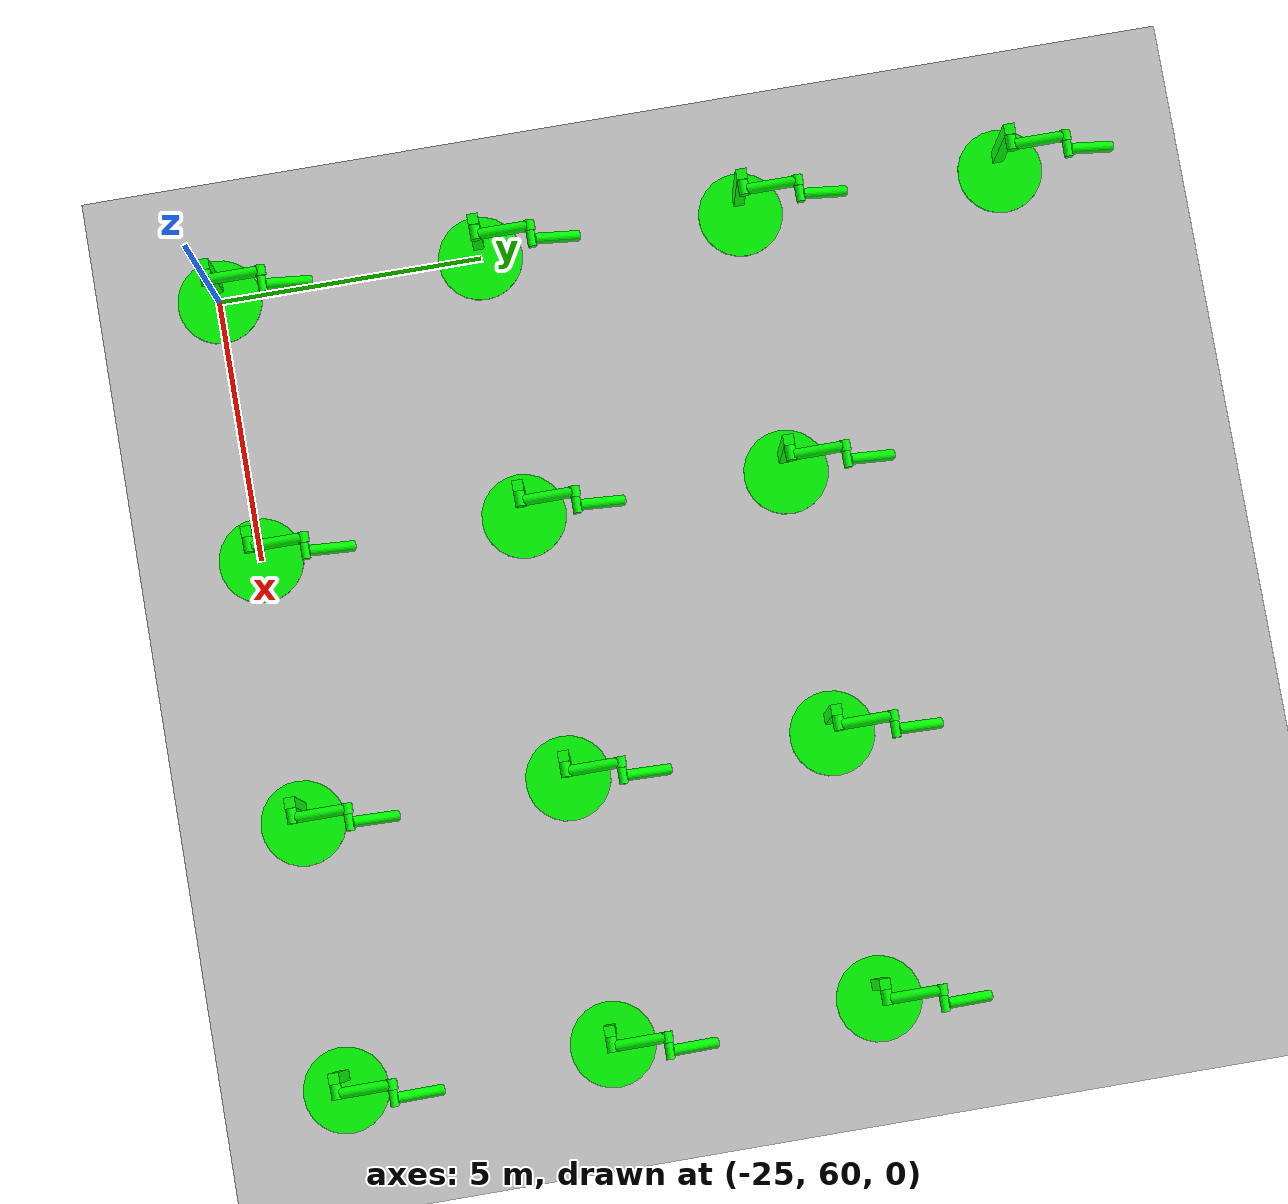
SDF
<sdf version="1.6">
 <world name="double_pendulums">
  <model name="ground_plane">
   <static>true</static>
   <link name="link">
    <collision name="collision">
     <geometry><plane><normal>0 0 1</normal><size>100 100</size></plane></geometry>
    </collision>
    <visual name="visual">
     <geometry><plane><normal>0 0 1</normal><size>100 100</size></plane></geometry>
     <material>
      <ambient>0.8 0.8 0.8 1</ambient>
      <diffuse>0.8 0.8 0.8 1</diffuse>
      <specular>0.8 0.8 0.8 1</specular>
     </material>
    </visual>
   </link>
  </model>
  <model name="dbl_pendulum_300">
   <pose>-25 60 0 0 0 0</pose>
   <link name="base">
    <inertial><mass>100</mass></inertial>
    <visual name="vis_plate_on_ground">
     <pose>0 0 0.01 0 0 0</pose>
     <geometry><cylinder><radius>0.8</radius><length>0.02</length></cylinder></geometry>
     <material><ambient>0 1 0 1</ambient><diffuse>0 1 0 1</diffuse><specular>0 1 0 1</specular></material>
    </visual>
    <visual name="vis_pole">
     <pose>-0.275 0 1.1 0 0 0</pose>
     <geometry><box><size>0.2 0.2 2.2</size></box></geometry>
     <material><ambient>0 1 0 1</ambient><diffuse>0 1 0 1</diffuse><specular>0 1 0 1</specular></material>
    </visual>
    <collision name="col_plate_on_ground">
     <pose>0 0 0.01 0 0 0</pose>
     <geometry><cylinder><radius>0.8</radius><length>0.02</length></cylinder></geometry>
    </collision>
    <collision name="col_pole">
     <pose>-0.275 0 1.1 0 0 0</pose>
     <geometry><box><size>0.2 0.2 2.2</size></box></geometry>
    </collision>
   </link>
   <link name="upper_link">
    <pose>0 0 2.1 -1.5708 0 0</pose>
    <inertial><pose>0 0 0.5 0 0 0</pose></inertial>
    <visual name="vis_upper_joint">
     <pose>-0.05 0 0 0 1.5708 0</pose>
     <geometry><cylinder><radius>0.1</radius><length>0.3</length></cylinder></geometry>
     <material><ambient>0 1 0 1</ambient><diffuse>0 1 0 1</diffuse><specular>0 1 0 1</specular></material>
    </visual>
    <visual name="vis_lower_joint">
     <pose>0 0 1.0 0 1.5708 0</pose>
     <geometry><cylinder><radius>0.1</radius><length>0.2</length></cylinder></geometry>
     <material><ambient>0 1 0 1</ambient><diffuse>0 1 0 1</diffuse><specular>0 1 0 1</specular></material>
    </visual>
    <visual name="vis_cylinder">
     <pose>0 0 0.5 0 0 0</pose>
     <geometry><cylinder><radius>0.1</radius><length>0.9</length></cylinder></geometry>
     <material><ambient>0 1 0 1</ambient><diffuse>0 1 0 1</diffuse><specular>0 1 0 1</specular></material>
    </visual>
    <collision name="col_upper_joint">
     <pose>-0.05 0 0 0 1.5708 0</pose>
     <geometry><cylinder><radius>0.1</radius><length>0.3</length></cylinder></geometry>
    </collision>
    <collision name="col_lower_joint">
     <pose>0 0 1.0 0 1.5708 0</pose>
     <geometry><cylinder><radius>0.1</radius><length>0.2</length></cylinder></geometry>
    </collision>
    <collision name="col_cylinder">
     <pose>0 0 0.5 0 0 0</pose>
     <geometry><cylinder><radius>0.1</radius><length>0.9</length></cylinder></geometry>
    </collision>
   </link>
   <link name="lower_link">
    <pose>0.25 1.0 2.1 -2 0 0</pose>
    <inertial><pose>0 0 0.5 0 0 0</pose></inertial>
    <visual name="vis_lower_joint">
     <pose>0 0 0 0 1.5708 0</pose>
     <geometry><cylinder><radius>0.08</radius><length>0.3</length></cylinder></geometry>
     <material><ambient>0 1 0 1</ambient><diffuse>0 1 0 1</diffuse><specular>0 1 0 1</specular></material>
    </visual>
    <visual name="vis_cylinder">
     <pose>0 0 0.5 0 0 0</pose>
     <geometry><cylinder><radius>0.1</radius><length>0.9</length></cylinder></geometry>
     <material><ambient>0 1 0 1</ambient><diffuse>0 1 0 1</diffuse><specular>0 1 0 1</specular></material>
    </visual>
    <collision name="col_lower_joint">
     <pose>0 0 0 0 1.5708 0</pose>
     <geometry><cylinder><radius>0.08</radius><length>0.3</length></cylinder></geometry>
    </collision>
    <collision name="col_cylinder">
     <pose>0 0 0.5 0 0 0</pose>
     <geometry><cylinder><radius>0.1</radius><length>0.9</length></cylinder></geometry>
    </collision>
   </link>
   <joint name="upper_joint" type="revolute">
    <parent>base</parent>
    <child>upper_link</child>
    <axis><xyz>1.0 0 0</xyz></axis>
   </joint>
   <joint name="lower_joint" type="revolute">
    <parent>upper_link</parent>
    <child>lower_link</child>
    <axis><xyz>1.0 0 0</xyz></axis>
   </joint>
  </model>
  <model name="dbl_pendulum_301">
   <pose>-20 60 0 0 0 0</pose>
   <link name="base">
    <inertial><mass>100</mass></inertial>
    <visual name="vis_plate_on_ground">
     <pose>0 0 0.01 0 0 0</pose>
     <geometry><cylinder><radius>0.8</radius><length>0.02</length></cylinder></geometry>
     <material><ambient>0 1 0 1</ambient><diffuse>0 1 0 1</diffuse><specular>0 1 0 1</specular></material>
    </visual>
    <visual name="vis_pole">
     <pose>-0.275 0 1.1 0 0 0</pose>
     <geometry><box><size>0.2 0.2 2.2</size></box></geometry>
     <material><ambient>0 1 0 1</ambient><diffuse>0 1 0 1</diffuse><specular>0 1 0 1</specular></material>
    </visual>
    <collision name="col_plate_on_ground">
     <pose>0 0 0.01 0 0 0</pose>
     <geometry><cylinder><radius>0.8</radius><length>0.02</length></cylinder></geometry>
    </collision>
    <collision name="col_pole">
     <pose>-0.275 0 1.1 0 0 0</pose>
     <geometry><box><size>0.2 0.2 2.2</size></box></geometry>
    </collision>
   </link>
   <link name="upper_link">
    <pose>0 0 2.1 -1.5708 0 0</pose>
    <inertial><pose>0 0 0.5 0 0 0</pose></inertial>
    <visual name="vis_upper_joint">
     <pose>-0.05 0 0 0 1.5708 0</pose>
     <geometry><cylinder><radius>0.1</radius><length>0.3</length></cylinder></geometry>
     <material><ambient>0 1 0 1</ambient><diffuse>0 1 0 1</diffuse><specular>0 1 0 1</specular></material>
    </visual>
    <visual name="vis_lower_joint">
     <pose>0 0 1.0 0 1.5708 0</pose>
     <geometry><cylinder><radius>0.1</radius><length>0.2</length></cylinder></geometry>
     <material><ambient>0 1 0 1</ambient><diffuse>0 1 0 1</diffuse><specular>0 1 0 1</specular></material>
    </visual>
    <visual name="vis_cylinder">
     <pose>0 0 0.5 0 0 0</pose>
     <geometry><cylinder><radius>0.1</radius><length>0.9</length></cylinder></geometry>
     <material><ambient>0 1 0 1</ambient><diffuse>0 1 0 1</diffuse><specular>0 1 0 1</specular></material>
    </visual>
    <collision name="col_upper_joint">
     <pose>-0.05 0 0 0 1.5708 0</pose>
     <geometry><cylinder><radius>0.1</radius><length>0.3</length></cylinder></geometry>
    </collision>
    <collision name="col_lower_joint">
     <pose>0 0 1.0 0 1.5708 0</pose>
     <geometry><cylinder><radius>0.1</radius><length>0.2</length></cylinder></geometry>
    </collision>
    <collision name="col_cylinder">
     <pose>0 0 0.5 0 0 0</pose>
     <geometry><cylinder><radius>0.1</radius><length>0.9</length></cylinder></geometry>
    </collision>
   </link>
   <link name="lower_link">
    <pose>0.25 1.0 2.1 -2 0 0</pose>
    <inertial><pose>0 0 0.5 0 0 0</pose></inertial>
    <visual name="vis_lower_joint">
     <pose>0 0 0 0 1.5708 0</pose>
     <geometry><cylinder><radius>0.08</radius><length>0.3</length></cylinder></geometry>
     <material><ambient>0 1 0 1</ambient><diffuse>0 1 0 1</diffuse><specular>0 1 0 1</specular></material>
    </visual>
    <visual name="vis_cylinder">
     <pose>0 0 0.5 0 0 0</pose>
     <geometry><cylinder><radius>0.1</radius><length>0.9</length></cylinder></geometry>
     <material><ambient>0 1 0 1</ambient><diffuse>0 1 0 1</diffuse><specular>0 1 0 1</specular></material>
    </visual>
    <collision name="col_lower_joint">
     <pose>0 0 0 0 1.5708 0</pose>
     <geometry><cylinder><radius>0.08</radius><length>0.3</length></cylinder></geometry>
    </collision>
    <collision name="col_cylinder">
     <pose>0 0 0.5 0 0 0</pose>
     <geometry><cylinder><radius>0.1</radius><length>0.9</length></cylinder></geometry>
    </collision>
   </link>
   <joint name="upper_joint" type="revolute">
    <parent>base</parent>
    <child>upper_link</child>
    <axis><xyz>1.0 0 0</xyz></axis>
   </joint>
   <joint name="lower_joint" type="revolute">
    <parent>upper_link</parent>
    <child>lower_link</child>
    <axis><xyz>1.0 0 0</xyz></axis>
   </joint>
  </model>
  <model name="dbl_pendulum_302">
   <pose>-15 60 0 0 0 0</pose>
   <link name="base">
    <inertial><mass>100</mass></inertial>
    <visual name="vis_plate_on_ground">
     <pose>0 0 0.01 0 0 0</pose>
     <geometry><cylinder><radius>0.8</radius><length>0.02</length></cylinder></geometry>
     <material><ambient>0 1 0 1</ambient><diffuse>0 1 0 1</diffuse><specular>0 1 0 1</specular></material>
    </visual>
    <visual name="vis_pole">
     <pose>-0.275 0 1.1 0 0 0</pose>
     <geometry><box><size>0.2 0.2 2.2</size></box></geometry>
     <material><ambient>0 1 0 1</ambient><diffuse>0 1 0 1</diffuse><specular>0 1 0 1</specular></material>
    </visual>
    <collision name="col_plate_on_ground">
     <pose>0 0 0.01 0 0 0</pose>
     <geometry><cylinder><radius>0.8</radius><length>0.02</length></cylinder></geometry>
    </collision>
    <collision name="col_pole">
     <pose>-0.275 0 1.1 0 0 0</pose>
     <geometry><box><size>0.2 0.2 2.2</size></box></geometry>
    </collision>
   </link>
   <link name="upper_link">
    <pose>0 0 2.1 -1.5708 0 0</pose>
    <inertial><pose>0 0 0.5 0 0 0</pose></inertial>
    <visual name="vis_upper_joint">
     <pose>-0.05 0 0 0 1.5708 0</pose>
     <geometry><cylinder><radius>0.1</radius><length>0.3</length></cylinder></geometry>
     <material><ambient>0 1 0 1</ambient><diffuse>0 1 0 1</diffuse><specular>0 1 0 1</specular></material>
    </visual>
    <visual name="vis_lower_joint">
     <pose>0 0 1.0 0 1.5708 0</pose>
     <geometry><cylinder><radius>0.1</radius><length>0.2</length></cylinder></geometry>
     <material><ambient>0 1 0 1</ambient><diffuse>0 1 0 1</diffuse><specular>0 1 0 1</specular></material>
    </visual>
    <visual name="vis_cylinder">
     <pose>0 0 0.5 0 0 0</pose>
     <geometry><cylinder><radius>0.1</radius><length>0.9</length></cylinder></geometry>
     <material><ambient>0 1 0 1</ambient><diffuse>0 1 0 1</diffuse><specular>0 1 0 1</specular></material>
    </visual>
    <collision name="col_upper_joint">
     <pose>-0.05 0 0 0 1.5708 0</pose>
     <geometry><cylinder><radius>0.1</radius><length>0.3</length></cylinder></geometry>
    </collision>
    <collision name="col_lower_joint">
     <pose>0 0 1.0 0 1.5708 0</pose>
     <geometry><cylinder><radius>0.1</radius><length>0.2</length></cylinder></geometry>
    </collision>
    <collision name="col_cylinder">
     <pose>0 0 0.5 0 0 0</pose>
     <geometry><cylinder><radius>0.1</radius><length>0.9</length></cylinder></geometry>
    </collision>
   </link>
   <link name="lower_link">
    <pose>0.25 1.0 2.1 -2 0 0</pose>
    <inertial><pose>0 0 0.5 0 0 0</pose></inertial>
    <visual name="vis_lower_joint">
     <pose>0 0 0 0 1.5708 0</pose>
     <geometry><cylinder><radius>0.08</radius><length>0.3</length></cylinder></geometry>
     <material><ambient>0 1 0 1</ambient><diffuse>0 1 0 1</diffuse><specular>0 1 0 1</specular></material>
    </visual>
    <visual name="vis_cylinder">
     <pose>0 0 0.5 0 0 0</pose>
     <geometry><cylinder><radius>0.1</radius><length>0.9</length></cylinder></geometry>
     <material><ambient>0 1 0 1</ambient><diffuse>0 1 0 1</diffuse><specular>0 1 0 1</specular></material>
    </visual>
    <collision name="col_lower_joint">
     <pose>0 0 0 0 1.5708 0</pose>
     <geometry><cylinder><radius>0.08</radius><length>0.3</length></cylinder></geometry>
    </collision>
    <collision name="col_cylinder">
     <pose>0 0 0.5 0 0 0</pose>
     <geometry><cylinder><radius>0.1</radius><length>0.9</length></cylinder></geometry>
    </collision>
   </link>
   <joint name="upper_joint" type="revolute">
    <parent>base</parent>
    <child>upper_link</child>
    <axis><xyz>1.0 0 0</xyz></axis>
   </joint>
   <joint name="lower_joint" type="revolute">
    <parent>upper_link</parent>
    <child>lower_link</child>
    <axis><xyz>1.0 0 0</xyz></axis>
   </joint>
  </model>
  <model name="dbl_pendulum_303">
   <pose>-10 60 0 0 0 0</pose>
   <link name="base">
    <inertial><mass>100</mass></inertial>
    <visual name="vis_plate_on_ground">
     <pose>0 0 0.01 0 0 0</pose>
     <geometry><cylinder><radius>0.8</radius><length>0.02</length></cylinder></geometry>
     <material><ambient>0 1 0 1</ambient><diffuse>0 1 0 1</diffuse><specular>0 1 0 1</specular></material>
    </visual>
    <visual name="vis_pole">
     <pose>-0.275 0 1.1 0 0 0</pose>
     <geometry><box><size>0.2 0.2 2.2</size></box></geometry>
     <material><ambient>0 1 0 1</ambient><diffuse>0 1 0 1</diffuse><specular>0 1 0 1</specular></material>
    </visual>
    <collision name="col_plate_on_ground">
     <pose>0 0 0.01 0 0 0</pose>
     <geometry><cylinder><radius>0.8</radius><length>0.02</length></cylinder></geometry>
    </collision>
    <collision name="col_pole">
     <pose>-0.275 0 1.1 0 0 0</pose>
     <geometry><box><size>0.2 0.2 2.2</size></box></geometry>
    </collision>
   </link>
   <link name="upper_link">
    <pose>0 0 2.1 -1.5708 0 0</pose>
    <inertial><pose>0 0 0.5 0 0 0</pose></inertial>
    <visual name="vis_upper_joint">
     <pose>-0.05 0 0 0 1.5708 0</pose>
     <geometry><cylinder><radius>0.1</radius><length>0.3</length></cylinder></geometry>
     <material><ambient>0 1 0 1</ambient><diffuse>0 1 0 1</diffuse><specular>0 1 0 1</specular></material>
    </visual>
    <visual name="vis_lower_joint">
     <pose>0 0 1.0 0 1.5708 0</pose>
     <geometry><cylinder><radius>0.1</radius><length>0.2</length></cylinder></geometry>
     <material><ambient>0 1 0 1</ambient><diffuse>0 1 0 1</diffuse><specular>0 1 0 1</specular></material>
    </visual>
    <visual name="vis_cylinder">
     <pose>0 0 0.5 0 0 0</pose>
     <geometry><cylinder><radius>0.1</radius><length>0.9</length></cylinder></geometry>
     <material><ambient>0 1 0 1</ambient><diffuse>0 1 0 1</diffuse><specular>0 1 0 1</specular></material>
    </visual>
    <collision name="col_upper_joint">
     <pose>-0.05 0 0 0 1.5708 0</pose>
     <geometry><cylinder><radius>0.1</radius><length>0.3</length></cylinder></geometry>
    </collision>
    <collision name="col_lower_joint">
     <pose>0 0 1.0 0 1.5708 0</pose>
     <geometry><cylinder><radius>0.1</radius><length>0.2</length></cylinder></geometry>
    </collision>
    <collision name="col_cylinder">
     <pose>0 0 0.5 0 0 0</pose>
     <geometry><cylinder><radius>0.1</radius><length>0.9</length></cylinder></geometry>
    </collision>
   </link>
   <link name="lower_link">
    <pose>0.25 1.0 2.1 -2 0 0</pose>
    <inertial><pose>0 0 0.5 0 0 0</pose></inertial>
    <visual name="vis_lower_joint">
     <pose>0 0 0 0 1.5708 0</pose>
     <geometry><cylinder><radius>0.08</radius><length>0.3</length></cylinder></geometry>
     <material><ambient>0 1 0 1</ambient><diffuse>0 1 0 1</diffuse><specular>0 1 0 1</specular></material>
    </visual>
    <visual name="vis_cylinder">
     <pose>0 0 0.5 0 0 0</pose>
     <geometry><cylinder><radius>0.1</radius><length>0.9</length></cylinder></geometry>
     <material><ambient>0 1 0 1</ambient><diffuse>0 1 0 1</diffuse><specular>0 1 0 1</specular></material>
    </visual>
    <collision name="col_lower_joint">
     <pose>0 0 0 0 1.5708 0</pose>
     <geometry><cylinder><radius>0.08</radius><length>0.3</length></cylinder></geometry>
    </collision>
    <collision name="col_cylinder">
     <pose>0 0 0.5 0 0 0</pose>
     <geometry><cylinder><radius>0.1</radius><length>0.9</length></cylinder></geometry>
    </collision>
   </link>
   <joint name="upper_joint" type="revolute">
    <parent>base</parent>
    <child>upper_link</child>
    <axis><xyz>1.0 0 0</xyz></axis>
   </joint>
   <joint name="lower_joint" type="revolute">
    <parent>upper_link</parent>
    <child>lower_link</child>
    <axis><xyz>1.0 0 0</xyz></axis>
   </joint>
  </model>
  <model name="dbl_pendulum_325">
   <pose>-25 65 0 0 0 0</pose>
   <link name="base">
    <inertial><mass>100</mass></inertial>
    <visual name="vis_plate_on_ground">
     <pose>0 0 0.01 0 0 0</pose>
     <geometry><cylinder><radius>0.8</radius><length>0.02</length></cylinder></geometry>
     <material><ambient>0 1 0 1</ambient><diffuse>0 1 0 1</diffuse><specular>0 1 0 1</specular></material>
    </visual>
    <visual name="vis_pole">
     <pose>-0.275 0 1.1 0 0 0</pose>
     <geometry><box><size>0.2 0.2 2.2</size></box></geometry>
     <material><ambient>0 1 0 1</ambient><diffuse>0 1 0 1</diffuse><specular>0 1 0 1</specular></material>
    </visual>
    <collision name="col_plate_on_ground">
     <pose>0 0 0.01 0 0 0</pose>
     <geometry><cylinder><radius>0.8</radius><length>0.02</length></cylinder></geometry>
    </collision>
    <collision name="col_pole">
     <pose>-0.275 0 1.1 0 0 0</pose>
     <geometry><box><size>0.2 0.2 2.2</size></box></geometry>
    </collision>
   </link>
   <link name="upper_link">
    <pose>0 0 2.1 -1.5708 0 0</pose>
    <inertial><pose>0 0 0.5 0 0 0</pose></inertial>
    <visual name="vis_upper_joint">
     <pose>-0.05 0 0 0 1.5708 0</pose>
     <geometry><cylinder><radius>0.1</radius><length>0.3</length></cylinder></geometry>
     <material><ambient>0 1 0 1</ambient><diffuse>0 1 0 1</diffuse><specular>0 1 0 1</specular></material>
    </visual>
    <visual name="vis_lower_joint">
     <pose>0 0 1.0 0 1.5708 0</pose>
     <geometry><cylinder><radius>0.1</radius><length>0.2</length></cylinder></geometry>
     <material><ambient>0 1 0 1</ambient><diffuse>0 1 0 1</diffuse><specular>0 1 0 1</specular></material>
    </visual>
    <visual name="vis_cylinder">
     <pose>0 0 0.5 0 0 0</pose>
     <geometry><cylinder><radius>0.1</radius><length>0.9</length></cylinder></geometry>
     <material><ambient>0 1 0 1</ambient><diffuse>0 1 0 1</diffuse><specular>0 1 0 1</specular></material>
    </visual>
    <collision name="col_upper_joint">
     <pose>-0.05 0 0 0 1.5708 0</pose>
     <geometry><cylinder><radius>0.1</radius><length>0.3</length></cylinder></geometry>
    </collision>
    <collision name="col_lower_joint">
     <pose>0 0 1.0 0 1.5708 0</pose>
     <geometry><cylinder><radius>0.1</radius><length>0.2</length></cylinder></geometry>
    </collision>
    <collision name="col_cylinder">
     <pose>0 0 0.5 0 0 0</pose>
     <geometry><cylinder><radius>0.1</radius><length>0.9</length></cylinder></geometry>
    </collision>
   </link>
   <link name="lower_link">
    <pose>0.25 1.0 2.1 -2 0 0</pose>
    <inertial><pose>0 0 0.5 0 0 0</pose></inertial>
    <visual name="vis_lower_joint">
     <pose>0 0 0 0 1.5708 0</pose>
     <geometry><cylinder><radius>0.08</radius><length>0.3</length></cylinder></geometry>
     <material><ambient>0 1 0 1</ambient><diffuse>0 1 0 1</diffuse><specular>0 1 0 1</specular></material>
    </visual>
    <visual name="vis_cylinder">
     <pose>0 0 0.5 0 0 0</pose>
     <geometry><cylinder><radius>0.1</radius><length>0.9</length></cylinder></geometry>
     <material><ambient>0 1 0 1</ambient><diffuse>0 1 0 1</diffuse><specular>0 1 0 1</specular></material>
    </visual>
    <collision name="col_lower_joint">
     <pose>0 0 0 0 1.5708 0</pose>
     <geometry><cylinder><radius>0.08</radius><length>0.3</length></cylinder></geometry>
    </collision>
    <collision name="col_cylinder">
     <pose>0 0 0.5 0 0 0</pose>
     <geometry><cylinder><radius>0.1</radius><length>0.9</length></cylinder></geometry>
    </collision>
   </link>
   <joint name="upper_joint" type="revolute">
    <parent>base</parent>
    <child>upper_link</child>
    <axis><xyz>1.0 0 0</xyz></axis>
   </joint>
   <joint name="lower_joint" type="revolute">
    <parent>upper_link</parent>
    <child>lower_link</child>
    <axis><xyz>1.0 0 0</xyz></axis>
   </joint>
  </model>
  <model name="dbl_pendulum_326">
   <pose>-20 65 0 0 0 0</pose>
   <link name="base">
    <inertial><mass>100</mass></inertial>
    <visual name="vis_plate_on_ground">
     <pose>0 0 0.01 0 0 0</pose>
     <geometry><cylinder><radius>0.8</radius><length>0.02</length></cylinder></geometry>
     <material><ambient>0 1 0 1</ambient><diffuse>0 1 0 1</diffuse><specular>0 1 0 1</specular></material>
    </visual>
    <visual name="vis_pole">
     <pose>-0.275 0 1.1 0 0 0</pose>
     <geometry><box><size>0.2 0.2 2.2</size></box></geometry>
     <material><ambient>0 1 0 1</ambient><diffuse>0 1 0 1</diffuse><specular>0 1 0 1</specular></material>
    </visual>
    <collision name="col_plate_on_ground">
     <pose>0 0 0.01 0 0 0</pose>
     <geometry><cylinder><radius>0.8</radius><length>0.02</length></cylinder></geometry>
    </collision>
    <collision name="col_pole">
     <pose>-0.275 0 1.1 0 0 0</pose>
     <geometry><box><size>0.2 0.2 2.2</size></box></geometry>
    </collision>
   </link>
   <link name="upper_link">
    <pose>0 0 2.1 -1.5708 0 0</pose>
    <inertial><pose>0 0 0.5 0 0 0</pose></inertial>
    <visual name="vis_upper_joint">
     <pose>-0.05 0 0 0 1.5708 0</pose>
     <geometry><cylinder><radius>0.1</radius><length>0.3</length></cylinder></geometry>
     <material><ambient>0 1 0 1</ambient><diffuse>0 1 0 1</diffuse><specular>0 1 0 1</specular></material>
    </visual>
    <visual name="vis_lower_joint">
     <pose>0 0 1.0 0 1.5708 0</pose>
     <geometry><cylinder><radius>0.1</radius><length>0.2</length></cylinder></geometry>
     <material><ambient>0 1 0 1</ambient><diffuse>0 1 0 1</diffuse><specular>0 1 0 1</specular></material>
    </visual>
    <visual name="vis_cylinder">
     <pose>0 0 0.5 0 0 0</pose>
     <geometry><cylinder><radius>0.1</radius><length>0.9</length></cylinder></geometry>
     <material><ambient>0 1 0 1</ambient><diffuse>0 1 0 1</diffuse><specular>0 1 0 1</specular></material>
    </visual>
    <collision name="col_upper_joint">
     <pose>-0.05 0 0 0 1.5708 0</pose>
     <geometry><cylinder><radius>0.1</radius><length>0.3</length></cylinder></geometry>
    </collision>
    <collision name="col_lower_joint">
     <pose>0 0 1.0 0 1.5708 0</pose>
     <geometry><cylinder><radius>0.1</radius><length>0.2</length></cylinder></geometry>
    </collision>
    <collision name="col_cylinder">
     <pose>0 0 0.5 0 0 0</pose>
     <geometry><cylinder><radius>0.1</radius><length>0.9</length></cylinder></geometry>
    </collision>
   </link>
   <link name="lower_link">
    <pose>0.25 1.0 2.1 -2 0 0</pose>
    <inertial><pose>0 0 0.5 0 0 0</pose></inertial>
    <visual name="vis_lower_joint">
     <pose>0 0 0 0 1.5708 0</pose>
     <geometry><cylinder><radius>0.08</radius><length>0.3</length></cylinder></geometry>
     <material><ambient>0 1 0 1</ambient><diffuse>0 1 0 1</diffuse><specular>0 1 0 1</specular></material>
    </visual>
    <visual name="vis_cylinder">
     <pose>0 0 0.5 0 0 0</pose>
     <geometry><cylinder><radius>0.1</radius><length>0.9</length></cylinder></geometry>
     <material><ambient>0 1 0 1</ambient><diffuse>0 1 0 1</diffuse><specular>0 1 0 1</specular></material>
    </visual>
    <collision name="col_lower_joint">
     <pose>0 0 0 0 1.5708 0</pose>
     <geometry><cylinder><radius>0.08</radius><length>0.3</length></cylinder></geometry>
    </collision>
    <collision name="col_cylinder">
     <pose>0 0 0.5 0 0 0</pose>
     <geometry><cylinder><radius>0.1</radius><length>0.9</length></cylinder></geometry>
    </collision>
   </link>
   <joint name="upper_joint" type="revolute">
    <parent>base</parent>
    <child>upper_link</child>
    <axis><xyz>1.0 0 0</xyz></axis>
   </joint>
   <joint name="lower_joint" type="revolute">
    <parent>upper_link</parent>
    <child>lower_link</child>
    <axis><xyz>1.0 0 0</xyz></axis>
   </joint>
  </model>
  <model name="dbl_pendulum_327">
   <pose>-15 65 0 0 0 0</pose>
   <link name="base">
    <inertial><mass>100</mass></inertial>
    <visual name="vis_plate_on_ground">
     <pose>0 0 0.01 0 0 0</pose>
     <geometry><cylinder><radius>0.8</radius><length>0.02</length></cylinder></geometry>
     <material><ambient>0 1 0 1</ambient><diffuse>0 1 0 1</diffuse><specular>0 1 0 1</specular></material>
    </visual>
    <visual name="vis_pole">
     <pose>-0.275 0 1.1 0 0 0</pose>
     <geometry><box><size>0.2 0.2 2.2</size></box></geometry>
     <material><ambient>0 1 0 1</ambient><diffuse>0 1 0 1</diffuse><specular>0 1 0 1</specular></material>
    </visual>
    <collision name="col_plate_on_ground">
     <pose>0 0 0.01 0 0 0</pose>
     <geometry><cylinder><radius>0.8</radius><length>0.02</length></cylinder></geometry>
    </collision>
    <collision name="col_pole">
     <pose>-0.275 0 1.1 0 0 0</pose>
     <geometry><box><size>0.2 0.2 2.2</size></box></geometry>
    </collision>
   </link>
   <link name="upper_link">
    <pose>0 0 2.1 -1.5708 0 0</pose>
    <inertial><pose>0 0 0.5 0 0 0</pose></inertial>
    <visual name="vis_upper_joint">
     <pose>-0.05 0 0 0 1.5708 0</pose>
     <geometry><cylinder><radius>0.1</radius><length>0.3</length></cylinder></geometry>
     <material><ambient>0 1 0 1</ambient><diffuse>0 1 0 1</diffuse><specular>0 1 0 1</specular></material>
    </visual>
    <visual name="vis_lower_joint">
     <pose>0 0 1.0 0 1.5708 0</pose>
     <geometry><cylinder><radius>0.1</radius><length>0.2</length></cylinder></geometry>
     <material><ambient>0 1 0 1</ambient><diffuse>0 1 0 1</diffuse><specular>0 1 0 1</specular></material>
    </visual>
    <visual name="vis_cylinder">
     <pose>0 0 0.5 0 0 0</pose>
     <geometry><cylinder><radius>0.1</radius><length>0.9</length></cylinder></geometry>
     <material><ambient>0 1 0 1</ambient><diffuse>0 1 0 1</diffuse><specular>0 1 0 1</specular></material>
    </visual>
    <collision name="col_upper_joint">
     <pose>-0.05 0 0 0 1.5708 0</pose>
     <geometry><cylinder><radius>0.1</radius><length>0.3</length></cylinder></geometry>
    </collision>
    <collision name="col_lower_joint">
     <pose>0 0 1.0 0 1.5708 0</pose>
     <geometry><cylinder><radius>0.1</radius><length>0.2</length></cylinder></geometry>
    </collision>
    <collision name="col_cylinder">
     <pose>0 0 0.5 0 0 0</pose>
     <geometry><cylinder><radius>0.1</radius><length>0.9</length></cylinder></geometry>
    </collision>
   </link>
   <link name="lower_link">
    <pose>0.25 1.0 2.1 -2 0 0</pose>
    <inertial><pose>0 0 0.5 0 0 0</pose></inertial>
    <visual name="vis_lower_joint">
     <pose>0 0 0 0 1.5708 0</pose>
     <geometry><cylinder><radius>0.08</radius><length>0.3</length></cylinder></geometry>
     <material><ambient>0 1 0 1</ambient><diffuse>0 1 0 1</diffuse><specular>0 1 0 1</specular></material>
    </visual>
    <visual name="vis_cylinder">
     <pose>0 0 0.5 0 0 0</pose>
     <geometry><cylinder><radius>0.1</radius><length>0.9</length></cylinder></geometry>
     <material><ambient>0 1 0 1</ambient><diffuse>0 1 0 1</diffuse><specular>0 1 0 1</specular></material>
    </visual>
    <collision name="col_lower_joint">
     <pose>0 0 0 0 1.5708 0</pose>
     <geometry><cylinder><radius>0.08</radius><length>0.3</length></cylinder></geometry>
    </collision>
    <collision name="col_cylinder">
     <pose>0 0 0.5 0 0 0</pose>
     <geometry><cylinder><radius>0.1</radius><length>0.9</length></cylinder></geometry>
    </collision>
   </link>
   <joint name="upper_joint" type="revolute">
    <parent>base</parent>
    <child>upper_link</child>
    <axis><xyz>1.0 0 0</xyz></axis>
   </joint>
   <joint name="lower_joint" type="revolute">
    <parent>upper_link</parent>
    <child>lower_link</child>
    <axis><xyz>1.0 0 0</xyz></axis>
   </joint>
  </model>
  <model name="dbl_pendulum_328">
   <pose>-10 65 0 0 0 0</pose>
   <link name="base">
    <inertial><mass>100</mass></inertial>
    <visual name="vis_plate_on_ground">
     <pose>0 0 0.01 0 0 0</pose>
     <geometry><cylinder><radius>0.8</radius><length>0.02</length></cylinder></geometry>
     <material><ambient>0 1 0 1</ambient><diffuse>0 1 0 1</diffuse><specular>0 1 0 1</specular></material>
    </visual>
    <visual name="vis_pole">
     <pose>-0.275 0 1.1 0 0 0</pose>
     <geometry><box><size>0.2 0.2 2.2</size></box></geometry>
     <material><ambient>0 1 0 1</ambient><diffuse>0 1 0 1</diffuse><specular>0 1 0 1</specular></material>
    </visual>
    <collision name="col_plate_on_ground">
     <pose>0 0 0.01 0 0 0</pose>
     <geometry><cylinder><radius>0.8</radius><length>0.02</length></cylinder></geometry>
    </collision>
    <collision name="col_pole">
     <pose>-0.275 0 1.1 0 0 0</pose>
     <geometry><box><size>0.2 0.2 2.2</size></box></geometry>
    </collision>
   </link>
   <link name="upper_link">
    <pose>0 0 2.1 -1.5708 0 0</pose>
    <inertial><pose>0 0 0.5 0 0 0</pose></inertial>
    <visual name="vis_upper_joint">
     <pose>-0.05 0 0 0 1.5708 0</pose>
     <geometry><cylinder><radius>0.1</radius><length>0.3</length></cylinder></geometry>
     <material><ambient>0 1 0 1</ambient><diffuse>0 1 0 1</diffuse><specular>0 1 0 1</specular></material>
    </visual>
    <visual name="vis_lower_joint">
     <pose>0 0 1.0 0 1.5708 0</pose>
     <geometry><cylinder><radius>0.1</radius><length>0.2</length></cylinder></geometry>
     <material><ambient>0 1 0 1</ambient><diffuse>0 1 0 1</diffuse><specular>0 1 0 1</specular></material>
    </visual>
    <visual name="vis_cylinder">
     <pose>0 0 0.5 0 0 0</pose>
     <geometry><cylinder><radius>0.1</radius><length>0.9</length></cylinder></geometry>
     <material><ambient>0 1 0 1</ambient><diffuse>0 1 0 1</diffuse><specular>0 1 0 1</specular></material>
    </visual>
    <collision name="col_upper_joint">
     <pose>-0.05 0 0 0 1.5708 0</pose>
     <geometry><cylinder><radius>0.1</radius><length>0.3</length></cylinder></geometry>
    </collision>
    <collision name="col_lower_joint">
     <pose>0 0 1.0 0 1.5708 0</pose>
     <geometry><cylinder><radius>0.1</radius><length>0.2</length></cylinder></geometry>
    </collision>
    <collision name="col_cylinder">
     <pose>0 0 0.5 0 0 0</pose>
     <geometry><cylinder><radius>0.1</radius><length>0.9</length></cylinder></geometry>
    </collision>
   </link>
   <link name="lower_link">
    <pose>0.25 1.0 2.1 -2 0 0</pose>
    <inertial><pose>0 0 0.5 0 0 0</pose></inertial>
    <visual name="vis_lower_joint">
     <pose>0 0 0 0 1.5708 0</pose>
     <geometry><cylinder><radius>0.08</radius><length>0.3</length></cylinder></geometry>
     <material><ambient>0 1 0 1</ambient><diffuse>0 1 0 1</diffuse><specular>0 1 0 1</specular></material>
    </visual>
    <visual name="vis_cylinder">
     <pose>0 0 0.5 0 0 0</pose>
     <geometry><cylinder><radius>0.1</radius><length>0.9</length></cylinder></geometry>
     <material><ambient>0 1 0 1</ambient><diffuse>0 1 0 1</diffuse><specular>0 1 0 1</specular></material>
    </visual>
    <collision name="col_lower_joint">
     <pose>0 0 0 0 1.5708 0</pose>
     <geometry><cylinder><radius>0.08</radius><length>0.3</length></cylinder></geometry>
    </collision>
    <collision name="col_cylinder">
     <pose>0 0 0.5 0 0 0</pose>
     <geometry><cylinder><radius>0.1</radius><length>0.9</length></cylinder></geometry>
    </collision>
   </link>
   <joint name="upper_joint" type="revolute">
    <parent>base</parent>
    <child>upper_link</child>
    <axis><xyz>1.0 0 0</xyz></axis>
   </joint>
   <joint name="lower_joint" type="revolute">
    <parent>upper_link</parent>
    <child>lower_link</child>
    <axis><xyz>1.0 0 0</xyz></axis>
   </joint>
  </model>
  <model name="dbl_pendulum_350">
   <pose>-25 70 0 0 0 0</pose>
   <link name="base">
    <inertial><mass>100</mass></inertial>
    <visual name="vis_plate_on_ground">
     <pose>0 0 0.01 0 0 0</pose>
     <geometry><cylinder><radius>0.8</radius><length>0.02</length></cylinder></geometry>
     <material><ambient>0 1 0 1</ambient><diffuse>0 1 0 1</diffuse><specular>0 1 0 1</specular></material>
    </visual>
    <visual name="vis_pole">
     <pose>-0.275 0 1.1 0 0 0</pose>
     <geometry><box><size>0.2 0.2 2.2</size></box></geometry>
     <material><ambient>0 1 0 1</ambient><diffuse>0 1 0 1</diffuse><specular>0 1 0 1</specular></material>
    </visual>
    <collision name="col_plate_on_ground">
     <pose>0 0 0.01 0 0 0</pose>
     <geometry><cylinder><radius>0.8</radius><length>0.02</length></cylinder></geometry>
    </collision>
    <collision name="col_pole">
     <pose>-0.275 0 1.1 0 0 0</pose>
     <geometry><box><size>0.2 0.2 2.2</size></box></geometry>
    </collision>
   </link>
   <link name="upper_link">
    <pose>0 0 2.1 -1.5708 0 0</pose>
    <inertial><pose>0 0 0.5 0 0 0</pose></inertial>
    <visual name="vis_upper_joint">
     <pose>-0.05 0 0 0 1.5708 0</pose>
     <geometry><cylinder><radius>0.1</radius><length>0.3</length></cylinder></geometry>
     <material><ambient>0 1 0 1</ambient><diffuse>0 1 0 1</diffuse><specular>0 1 0 1</specular></material>
    </visual>
    <visual name="vis_lower_joint">
     <pose>0 0 1.0 0 1.5708 0</pose>
     <geometry><cylinder><radius>0.1</radius><length>0.2</length></cylinder></geometry>
     <material><ambient>0 1 0 1</ambient><diffuse>0 1 0 1</diffuse><specular>0 1 0 1</specular></material>
    </visual>
    <visual name="vis_cylinder">
     <pose>0 0 0.5 0 0 0</pose>
     <geometry><cylinder><radius>0.1</radius><length>0.9</length></cylinder></geometry>
     <material><ambient>0 1 0 1</ambient><diffuse>0 1 0 1</diffuse><specular>0 1 0 1</specular></material>
    </visual>
    <collision name="col_upper_joint">
     <pose>-0.05 0 0 0 1.5708 0</pose>
     <geometry><cylinder><radius>0.1</radius><length>0.3</length></cylinder></geometry>
    </collision>
    <collision name="col_lower_joint">
     <pose>0 0 1.0 0 1.5708 0</pose>
     <geometry><cylinder><radius>0.1</radius><length>0.2</length></cylinder></geometry>
    </collision>
    <collision name="col_cylinder">
     <pose>0 0 0.5 0 0 0</pose>
     <geometry><cylinder><radius>0.1</radius><length>0.9</length></cylinder></geometry>
    </collision>
   </link>
   <link name="lower_link">
    <pose>0.25 1.0 2.1 -2 0 0</pose>
    <inertial><pose>0 0 0.5 0 0 0</pose></inertial>
    <visual name="vis_lower_joint">
     <pose>0 0 0 0 1.5708 0</pose>
     <geometry><cylinder><radius>0.08</radius><length>0.3</length></cylinder></geometry>
     <material><ambient>0 1 0 1</ambient><diffuse>0 1 0 1</diffuse><specular>0 1 0 1</specular></material>
    </visual>
    <visual name="vis_cylinder">
     <pose>0 0 0.5 0 0 0</pose>
     <geometry><cylinder><radius>0.1</radius><length>0.9</length></cylinder></geometry>
     <material><ambient>0 1 0 1</ambient><diffuse>0 1 0 1</diffuse><specular>0 1 0 1</specular></material>
    </visual>
    <collision name="col_lower_joint">
     <pose>0 0 0 0 1.5708 0</pose>
     <geometry><cylinder><radius>0.08</radius><length>0.3</length></cylinder></geometry>
    </collision>
    <collision name="col_cylinder">
     <pose>0 0 0.5 0 0 0</pose>
     <geometry><cylinder><radius>0.1</radius><length>0.9</length></cylinder></geometry>
    </collision>
   </link>
   <joint name="upper_joint" type="revolute">
    <parent>base</parent>
    <child>upper_link</child>
    <axis><xyz>1.0 0 0</xyz></axis>
   </joint>
   <joint name="lower_joint" type="revolute">
    <parent>upper_link</parent>
    <child>lower_link</child>
    <axis><xyz>1.0 0 0</xyz></axis>
   </joint>
  </model>
  <model name="dbl_pendulum_351">
   <pose>-20 70 0 0 0 0</pose>
   <link name="base">
    <inertial><mass>100</mass></inertial>
    <visual name="vis_plate_on_ground">
     <pose>0 0 0.01 0 0 0</pose>
     <geometry><cylinder><radius>0.8</radius><length>0.02</length></cylinder></geometry>
     <material><ambient>0 1 0 1</ambient><diffuse>0 1 0 1</diffuse><specular>0 1 0 1</specular></material>
    </visual>
    <visual name="vis_pole">
     <pose>-0.275 0 1.1 0 0 0</pose>
     <geometry><box><size>0.2 0.2 2.2</size></box></geometry>
     <material><ambient>0 1 0 1</ambient><diffuse>0 1 0 1</diffuse><specular>0 1 0 1</specular></material>
    </visual>
    <collision name="col_plate_on_ground">
     <pose>0 0 0.01 0 0 0</pose>
     <geometry><cylinder><radius>0.8</radius><length>0.02</length></cylinder></geometry>
    </collision>
    <collision name="col_pole">
     <pose>-0.275 0 1.1 0 0 0</pose>
     <geometry><box><size>0.2 0.2 2.2</size></box></geometry>
    </collision>
   </link>
   <link name="upper_link">
    <pose>0 0 2.1 -1.5708 0 0</pose>
    <inertial><pose>0 0 0.5 0 0 0</pose></inertial>
    <visual name="vis_upper_joint">
     <pose>-0.05 0 0 0 1.5708 0</pose>
     <geometry><cylinder><radius>0.1</radius><length>0.3</length></cylinder></geometry>
     <material><ambient>0 1 0 1</ambient><diffuse>0 1 0 1</diffuse><specular>0 1 0 1</specular></material>
    </visual>
    <visual name="vis_lower_joint">
     <pose>0 0 1.0 0 1.5708 0</pose>
     <geometry><cylinder><radius>0.1</radius><length>0.2</length></cylinder></geometry>
     <material><ambient>0 1 0 1</ambient><diffuse>0 1 0 1</diffuse><specular>0 1 0 1</specular></material>
    </visual>
    <visual name="vis_cylinder">
     <pose>0 0 0.5 0 0 0</pose>
     <geometry><cylinder><radius>0.1</radius><length>0.9</length></cylinder></geometry>
     <material><ambient>0 1 0 1</ambient><diffuse>0 1 0 1</diffuse><specular>0 1 0 1</specular></material>
    </visual>
    <collision name="col_upper_joint">
     <pose>-0.05 0 0 0 1.5708 0</pose>
     <geometry><cylinder><radius>0.1</radius><length>0.3</length></cylinder></geometry>
    </collision>
    <collision name="col_lower_joint">
     <pose>0 0 1.0 0 1.5708 0</pose>
     <geometry><cylinder><radius>0.1</radius><length>0.2</length></cylinder></geometry>
    </collision>
    <collision name="col_cylinder">
     <pose>0 0 0.5 0 0 0</pose>
     <geometry><cylinder><radius>0.1</radius><length>0.9</length></cylinder></geometry>
    </collision>
   </link>
   <link name="lower_link">
    <pose>0.25 1.0 2.1 -2 0 0</pose>
    <inertial><pose>0 0 0.5 0 0 0</pose></inertial>
    <visual name="vis_lower_joint">
     <pose>0 0 0 0 1.5708 0</pose>
     <geometry><cylinder><radius>0.08</radius><length>0.3</length></cylinder></geometry>
     <material><ambient>0 1 0 1</ambient><diffuse>0 1 0 1</diffuse><specular>0 1 0 1</specular></material>
    </visual>
    <visual name="vis_cylinder">
     <pose>0 0 0.5 0 0 0</pose>
     <geometry><cylinder><radius>0.1</radius><length>0.9</length></cylinder></geometry>
     <material><ambient>0 1 0 1</ambient><diffuse>0 1 0 1</diffuse><specular>0 1 0 1</specular></material>
    </visual>
    <collision name="col_lower_joint">
     <pose>0 0 0 0 1.5708 0</pose>
     <geometry><cylinder><radius>0.08</radius><length>0.3</length></cylinder></geometry>
    </collision>
    <collision name="col_cylinder">
     <pose>0 0 0.5 0 0 0</pose>
     <geometry><cylinder><radius>0.1</radius><length>0.9</length></cylinder></geometry>
    </collision>
   </link>
   <joint name="upper_joint" type="revolute">
    <parent>base</parent>
    <child>upper_link</child>
    <axis><xyz>1.0 0 0</xyz></axis>
   </joint>
   <joint name="lower_joint" type="revolute">
    <parent>upper_link</parent>
    <child>lower_link</child>
    <axis><xyz>1.0 0 0</xyz></axis>
   </joint>
  </model>
  <model name="dbl_pendulum_352">
   <pose>-15 70 0 0 0 0</pose>
   <link name="base">
    <inertial><mass>100</mass></inertial>
    <visual name="vis_plate_on_ground">
     <pose>0 0 0.01 0 0 0</pose>
     <geometry><cylinder><radius>0.8</radius><length>0.02</length></cylinder></geometry>
     <material><ambient>0 1 0 1</ambient><diffuse>0 1 0 1</diffuse><specular>0 1 0 1</specular></material>
    </visual>
    <visual name="vis_pole">
     <pose>-0.275 0 1.1 0 0 0</pose>
     <geometry><box><size>0.2 0.2 2.2</size></box></geometry>
     <material><ambient>0 1 0 1</ambient><diffuse>0 1 0 1</diffuse><specular>0 1 0 1</specular></material>
    </visual>
    <collision name="col_plate_on_ground">
     <pose>0 0 0.01 0 0 0</pose>
     <geometry><cylinder><radius>0.8</radius><length>0.02</length></cylinder></geometry>
    </collision>
    <collision name="col_pole">
     <pose>-0.275 0 1.1 0 0 0</pose>
     <geometry><box><size>0.2 0.2 2.2</size></box></geometry>
    </collision>
   </link>
   <link name="upper_link">
    <pose>0 0 2.1 -1.5708 0 0</pose>
    <inertial><pose>0 0 0.5 0 0 0</pose></inertial>
    <visual name="vis_upper_joint">
     <pose>-0.05 0 0 0 1.5708 0</pose>
     <geometry><cylinder><radius>0.1</radius><length>0.3</length></cylinder></geometry>
     <material><ambient>0 1 0 1</ambient><diffuse>0 1 0 1</diffuse><specular>0 1 0 1</specular></material>
    </visual>
    <visual name="vis_lower_joint">
     <pose>0 0 1.0 0 1.5708 0</pose>
     <geometry><cylinder><radius>0.1</radius><length>0.2</length></cylinder></geometry>
     <material><ambient>0 1 0 1</ambient><diffuse>0 1 0 1</diffuse><specular>0 1 0 1</specular></material>
    </visual>
    <visual name="vis_cylinder">
     <pose>0 0 0.5 0 0 0</pose>
     <geometry><cylinder><radius>0.1</radius><length>0.9</length></cylinder></geometry>
     <material><ambient>0 1 0 1</ambient><diffuse>0 1 0 1</diffuse><specular>0 1 0 1</specular></material>
    </visual>
    <collision name="col_upper_joint">
     <pose>-0.05 0 0 0 1.5708 0</pose>
     <geometry><cylinder><radius>0.1</radius><length>0.3</length></cylinder></geometry>
    </collision>
    <collision name="col_lower_joint">
     <pose>0 0 1.0 0 1.5708 0</pose>
     <geometry><cylinder><radius>0.1</radius><length>0.2</length></cylinder></geometry>
    </collision>
    <collision name="col_cylinder">
     <pose>0 0 0.5 0 0 0</pose>
     <geometry><cylinder><radius>0.1</radius><length>0.9</length></cylinder></geometry>
    </collision>
   </link>
   <link name="lower_link">
    <pose>0.25 1.0 2.1 -2 0 0</pose>
    <inertial><pose>0 0 0.5 0 0 0</pose></inertial>
    <visual name="vis_lower_joint">
     <pose>0 0 0 0 1.5708 0</pose>
     <geometry><cylinder><radius>0.08</radius><length>0.3</length></cylinder></geometry>
     <material><ambient>0 1 0 1</ambient><diffuse>0 1 0 1</diffuse><specular>0 1 0 1</specular></material>
    </visual>
    <visual name="vis_cylinder">
     <pose>0 0 0.5 0 0 0</pose>
     <geometry><cylinder><radius>0.1</radius><length>0.9</length></cylinder></geometry>
     <material><ambient>0 1 0 1</ambient><diffuse>0 1 0 1</diffuse><specular>0 1 0 1</specular></material>
    </visual>
    <collision name="col_lower_joint">
     <pose>0 0 0 0 1.5708 0</pose>
     <geometry><cylinder><radius>0.08</radius><length>0.3</length></cylinder></geometry>
    </collision>
    <collision name="col_cylinder">
     <pose>0 0 0.5 0 0 0</pose>
     <geometry><cylinder><radius>0.1</radius><length>0.9</length></cylinder></geometry>
    </collision>
   </link>
   <joint name="upper_joint" type="revolute">
    <parent>base</parent>
    <child>upper_link</child>
    <axis><xyz>1.0 0 0</xyz></axis>
   </joint>
   <joint name="lower_joint" type="revolute">
    <parent>upper_link</parent>
    <child>lower_link</child>
    <axis><xyz>1.0 0 0</xyz></axis>
   </joint>
  </model>
  <model name="dbl_pendulum_353">
   <pose>-10 70 0 0 0 0</pose>
   <link name="base">
    <inertial><mass>100</mass></inertial>
    <visual name="vis_plate_on_ground">
     <pose>0 0 0.01 0 0 0</pose>
     <geometry><cylinder><radius>0.8</radius><length>0.02</length></cylinder></geometry>
     <material><ambient>0 1 0 1</ambient><diffuse>0 1 0 1</diffuse><specular>0 1 0 1</specular></material>
    </visual>
    <visual name="vis_pole">
     <pose>-0.275 0 1.1 0 0 0</pose>
     <geometry><box><size>0.2 0.2 2.2</size></box></geometry>
     <material><ambient>0 1 0 1</ambient><diffuse>0 1 0 1</diffuse><specular>0 1 0 1</specular></material>
    </visual>
    <collision name="col_plate_on_ground">
     <pose>0 0 0.01 0 0 0</pose>
     <geometry><cylinder><radius>0.8</radius><length>0.02</length></cylinder></geometry>
    </collision>
    <collision name="col_pole">
     <pose>-0.275 0 1.1 0 0 0</pose>
     <geometry><box><size>0.2 0.2 2.2</size></box></geometry>
    </collision>
   </link>
   <link name="upper_link">
    <pose>0 0 2.1 -1.5708 0 0</pose>
    <inertial><pose>0 0 0.5 0 0 0</pose></inertial>
    <visual name="vis_upper_joint">
     <pose>-0.05 0 0 0 1.5708 0</pose>
     <geometry><cylinder><radius>0.1</radius><length>0.3</length></cylinder></geometry>
     <material><ambient>0 1 0 1</ambient><diffuse>0 1 0 1</diffuse><specular>0 1 0 1</specular></material>
    </visual>
    <visual name="vis_lower_joint">
     <pose>0 0 1.0 0 1.5708 0</pose>
     <geometry><cylinder><radius>0.1</radius><length>0.2</length></cylinder></geometry>
     <material><ambient>0 1 0 1</ambient><diffuse>0 1 0 1</diffuse><specular>0 1 0 1</specular></material>
    </visual>
    <visual name="vis_cylinder">
     <pose>0 0 0.5 0 0 0</pose>
     <geometry><cylinder><radius>0.1</radius><length>0.9</length></cylinder></geometry>
     <material><ambient>0 1 0 1</ambient><diffuse>0 1 0 1</diffuse><specular>0 1 0 1</specular></material>
    </visual>
    <collision name="col_upper_joint">
     <pose>-0.05 0 0 0 1.5708 0</pose>
     <geometry><cylinder><radius>0.1</radius><length>0.3</length></cylinder></geometry>
    </collision>
    <collision name="col_lower_joint">
     <pose>0 0 1.0 0 1.5708 0</pose>
     <geometry><cylinder><radius>0.1</radius><length>0.2</length></cylinder></geometry>
    </collision>
    <collision name="col_cylinder">
     <pose>0 0 0.5 0 0 0</pose>
     <geometry><cylinder><radius>0.1</radius><length>0.9</length></cylinder></geometry>
    </collision>
   </link>
   <link name="lower_link">
    <pose>0.25 1.0 2.1 -2 0 0</pose>
    <inertial><pose>0 0 0.5 0 0 0</pose></inertial>
    <visual name="vis_lower_joint">
     <pose>0 0 0 0 1.5708 0</pose>
     <geometry><cylinder><radius>0.08</radius><length>0.3</length></cylinder></geometry>
     <material><ambient>0 1 0 1</ambient><diffuse>0 1 0 1</diffuse><specular>0 1 0 1</specular></material>
    </visual>
    <visual name="vis_cylinder">
     <pose>0 0 0.5 0 0 0</pose>
     <geometry><cylinder><radius>0.1</radius><length>0.9</length></cylinder></geometry>
     <material><ambient>0 1 0 1</ambient><diffuse>0 1 0 1</diffuse><specular>0 1 0 1</specular></material>
    </visual>
    <collision name="col_lower_joint">
     <pose>0 0 0 0 1.5708 0</pose>
     <geometry><cylinder><radius>0.08</radius><length>0.3</length></cylinder></geometry>
    </collision>
    <collision name="col_cylinder">
     <pose>0 0 0.5 0 0 0</pose>
     <geometry><cylinder><radius>0.1</radius><length>0.9</length></cylinder></geometry>
    </collision>
   </link>
   <joint name="upper_joint" type="revolute">
    <parent>base</parent>
    <child>upper_link</child>
    <axis><xyz>1.0 0 0</xyz></axis>
   </joint>
   <joint name="lower_joint" type="revolute">
    <parent>upper_link</parent>
    <child>lower_link</child>
    <axis><xyz>1.0 0 0</xyz></axis>
   </joint>
  </model>
  <model name="dbl_pendulum_375">
   <pose>-25 75 0 0 0 0</pose>
   <link name="base">
    <inertial><mass>100</mass></inertial>
    <visual name="vis_plate_on_ground">
     <pose>0 0 0.01 0 0 0</pose>
     <geometry><cylinder><radius>0.8</radius><length>0.02</length></cylinder></geometry>
     <material><ambient>0 1 0 1</ambient><diffuse>0 1 0 1</diffuse><specular>0 1 0 1</specular></material>
    </visual>
    <visual name="vis_pole">
     <pose>-0.275 0 1.1 0 0 0</pose>
     <geometry><box><size>0.2 0.2 2.2</size></box></geometry>
     <material><ambient>0 1 0 1</ambient><diffuse>0 1 0 1</diffuse><specular>0 1 0 1</specular></material>
    </visual>
    <collision name="col_plate_on_ground">
     <pose>0 0 0.01 0 0 0</pose>
     <geometry><cylinder><radius>0.8</radius><length>0.02</length></cylinder></geometry>
    </collision>
    <collision name="col_pole">
     <pose>-0.275 0 1.1 0 0 0</pose>
     <geometry><box><size>0.2 0.2 2.2</size></box></geometry>
    </collision>
   </link>
   <link name="upper_link">
    <pose>0 0 2.1 -1.5708 0 0</pose>
    <inertial><pose>0 0 0.5 0 0 0</pose></inertial>
    <visual name="vis_upper_joint">
     <pose>-0.05 0 0 0 1.5708 0</pose>
     <geometry><cylinder><radius>0.1</radius><length>0.3</length></cylinder></geometry>
     <material><ambient>0 1 0 1</ambient><diffuse>0 1 0 1</diffuse><specular>0 1 0 1</specular></material>
    </visual>
    <visual name="vis_lower_joint">
     <pose>0 0 1.0 0 1.5708 0</pose>
     <geometry><cylinder><radius>0.1</radius><length>0.2</length></cylinder></geometry>
     <material><ambient>0 1 0 1</ambient><diffuse>0 1 0 1</diffuse><specular>0 1 0 1</specular></material>
    </visual>
    <visual name="vis_cylinder">
     <pose>0 0 0.5 0 0 0</pose>
     <geometry><cylinder><radius>0.1</radius><length>0.9</length></cylinder></geometry>
     <material><ambient>0 1 0 1</ambient><diffuse>0 1 0 1</diffuse><specular>0 1 0 1</specular></material>
    </visual>
    <collision name="col_upper_joint">
     <pose>-0.05 0 0 0 1.5708 0</pose>
     <geometry><cylinder><radius>0.1</radius><length>0.3</length></cylinder></geometry>
    </collision>
    <collision name="col_lower_joint">
     <pose>0 0 1.0 0 1.5708 0</pose>
     <geometry><cylinder><radius>0.1</radius><length>0.2</length></cylinder></geometry>
    </collision>
    <collision name="col_cylinder">
     <pose>0 0 0.5 0 0 0</pose>
     <geometry><cylinder><radius>0.1</radius><length>0.9</length></cylinder></geometry>
    </collision>
   </link>
   <link name="lower_link">
    <pose>0.25 1.0 2.1 -2 0 0</pose>
    <inertial><pose>0 0 0.5 0 0 0</pose></inertial>
    <visual name="vis_lower_joint">
     <pose>0 0 0 0 1.5708 0</pose>
     <geometry><cylinder><radius>0.08</radius><length>0.3</length></cylinder></geometry>
     <material><ambient>0 1 0 1</ambient><diffuse>0 1 0 1</diffuse><specular>0 1 0 1</specular></material>
    </visual>
    <visual name="vis_cylinder">
     <pose>0 0 0.5 0 0 0</pose>
     <geometry><cylinder><radius>0.1</radius><length>0.9</length></cylinder></geometry>
     <material><ambient>0 1 0 1</ambient><diffuse>0 1 0 1</diffuse><specular>0 1 0 1</specular></material>
    </visual>
    <collision name="col_lower_joint">
     <pose>0 0 0 0 1.5708 0</pose>
     <geometry><cylinder><radius>0.08</radius><length>0.3</length></cylinder></geometry>
    </collision>
    <collision name="col_cylinder">
     <pose>0 0 0.5 0 0 0</pose>
     <geometry><cylinder><radius>0.1</radius><length>0.9</length></cylinder></geometry>
    </collision>
   </link>
   <joint name="upper_joint" type="revolute">
    <parent>base</parent>
    <child>upper_link</child>
    <axis><xyz>1.0 0 0</xyz></axis>
   </joint>
   <joint name="lower_joint" type="revolute">
    <parent>upper_link</parent>
    <child>lower_link</child>
    <axis><xyz>1.0 0 0</xyz></axis>
   </joint>
  </model>
 </world>
</sdf>
